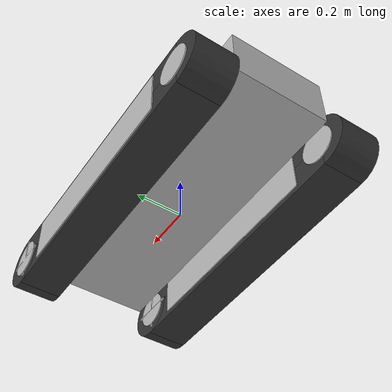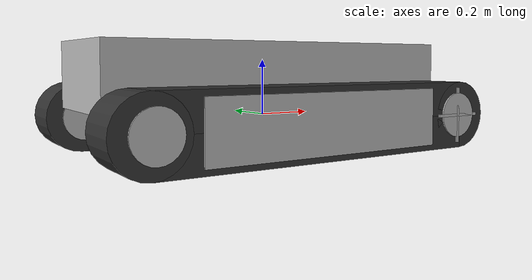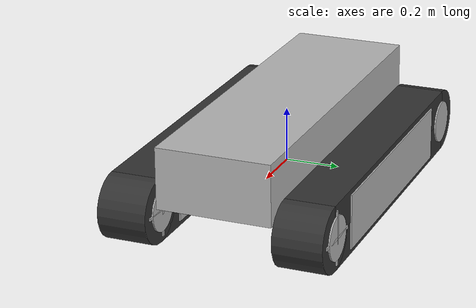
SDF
<sdf version='1.7'>
  <model name='gen3'>
    <link name='dummy'>
      <inertial>
        <pose>-0.00527 0 0 0 -0 0</pose>
        <mass>111</mass>
        <inertia>
          <ixx>3.0863</ixx>
          <ixy>0</ixy>
          <ixz>0</ixz>
          <iyy>16.4359</iyy>
          <iyz>0</iyz>
          <izz>18.6086</izz>
        </inertia>
      </inertial>
      <collision name='dummy_fixed_joint_lump__base_link_collision'>
        <pose>0 0 0.15 0 -0 0</pose>
        <geometry>
          <box>
            <size>1.34 0.42 0.225</size>
          </box>
        </geometry>
      </collision>
      <collision name='dummy_fixed_joint_lump__left_body_collision_1'>
        <pose>0 0.32 0 0 -0 0</pose>
        <geometry>
          <box>
            <size>0.9 0.19 0.2</size>
          </box>
        </geometry>
      </collision>
      <collision name='dummy_fixed_joint_lump__left_idler_collision_2'>
        <pose>-0.585 0.32 0 1.5708 -0 0</pose>
        <geometry>
          <cylinder>
            <length>0.19</length>
            <radius>0.08</radius>
          </cylinder>
        </geometry>
      </collision>
      <collision name='dummy_fixed_joint_lump__right_body_collision_3'>
        <pose>0 -0.32 0 0 -0 0</pose>
        <geometry>
          <box>
            <size>0.9 0.19 0.2</size>
          </box>
        </geometry>
      </collision>
      <collision name='dummy_fixed_joint_lump__right_idler_collision_4'>
        <pose>-0.585 -0.32 0 1.5708 -0 0</pose>
        <geometry>
          <cylinder>
            <length>0.19</length>
            <radius>0.08</radius>
          </cylinder>
        </geometry>
      </collision>
      <visual name='dummy_fixed_joint_lump__base_link_visual'>
        <pose>0 0 0.15 0 -0 0</pose>
        <geometry>
          <box>
            <size>1.34 0.42 0.225</size>
          </box>
        </geometry>
      </visual>
      <visual name='dummy_fixed_joint_lump__imu_link_visual_1'>
        <pose>0 0 0.2 0 -0 0</pose>
        <geometry>
          <box>
            <size>0.02 0.02 0.02</size>
          </box>
        </geometry>
      </visual>
      <visual name='dummy_fixed_joint_lump__left_body_visual_2'>
        <pose>0 0.32 0 0 -0 0</pose>
        <geometry>
          <box>
            <size>0.9 0.19 0.2</size>
          </box>
        </geometry>
      </visual>
      <visual name='dummy_fixed_joint_lump__left_idler_visual_3'>
        <pose>-0.585 0.32 0 1.5708 -0 0</pose>
        <geometry>
          <cylinder>
            <length>0.19</length>
            <radius>0.08</radius>
          </cylinder>
        </geometry>
      </visual>
      <visual name='dummy_fixed_joint_lump__right_body_visual_4'>
        <pose>0 -0.32 0 0 -0 0</pose>
        <geometry>
          <box>
            <size>0.9 0.19 0.2</size>
          </box>
        </geometry>
      </visual>
      <visual name='dummy_fixed_joint_lump__right_idler_visual_5'>
        <pose>-0.585 -0.32 0 1.5708 -0 0</pose>
        <geometry>
          <cylinder>
            <length>0.19</length>
            <radius>0.08</radius>
          </cylinder>
        </geometry>
      </visual>
      <gravity>1</gravity>
      <velocity_decay/>
      <gravity>1</gravity>
      <sensor name='imu_sensor' type='imu'>
        <imu>
          <angular_velocity>
            <x>
              <noise type='gaussian'>
                <mean>0</mean>
                <stddev>0.0002</stddev>
                <bias_mean>7.5e-06</bias_mean>
                <bias_stddev>8e-07</bias_stddev>
              </noise>
            </x>
            <y>
              <noise type='gaussian'>
                <mean>0</mean>
                <stddev>0.0002</stddev>
                <bias_mean>7.5e-06</bias_mean>
                <bias_stddev>8e-07</bias_stddev>
              </noise>
            </y>
            <z>
              <noise type='gaussian'>
                <mean>0</mean>
                <stddev>0.0002</stddev>
                <bias_mean>7.5e-06</bias_mean>
                <bias_stddev>8e-07</bias_stddev>
              </noise>
            </z>
          </angular_velocity>
          <linear_acceleration>
            <x>
              <noise type='gaussian'>
                <mean>0</mean>
                <stddev>0.017</stddev>
                <bias_mean>0.1</bias_mean>
                <bias_stddev>0.001</bias_stddev>
              </noise>
            </x>
            <y>
              <noise type='gaussian'>
                <mean>0</mean>
                <stddev>0.017</stddev>
                <bias_mean>0.1</bias_mean>
                <bias_stddev>0.001</bias_stddev>
              </noise>
            </y>
            <z>
              <noise type='gaussian'>
                <mean>0</mean>
                <stddev>0.017</stddev>
                <bias_mean>0.1</bias_mean>
                <bias_stddev>0.001</bias_stddev>
              </noise>
            </z>
          </linear_acceleration>
        </imu>
        <always_on>1</always_on>
        <update_rate>100</update_rate>
        <visualize>1</visualize>
        <topic>__default_topic__</topic>
        <plugin name='imu_plugin' filename='libgazebo_ros_imu_sensor.so'>
          <topicName>imu</topicName>
          <bodyName>imu_link</bodyName>
          <updateRateHZ>10.0</updateRateHZ>
          <gaussianNoise>0.0</gaussianNoise>
          <xyzOffset>0 0 0</xyzOffset>
          <rpyOffset>0 0 0</rpyOffset>
          <frameName>imu_link</frameName>
          <initialOrientationAsReference>0</initialOrientationAsReference>
        </plugin>
        <pose>0 0 0.2 0 -0 0</pose>
      </sensor>
    </link>
    <joint name='left_sprocket_axle' type='revolute'>
      <pose relative_to='dummy'>0.585 0.32 0 0 -0 0</pose>
      <parent>dummy</parent>
      <child>left_sprocket</child>
      <axis>
        <xyz>0 1 0</xyz>
        <limit>
          <lower>-1e+16</lower>
          <upper>1e+16</upper>
        </limit>
        <dynamics>
          <spring_reference>0</spring_reference>
          <spring_stiffness>0</spring_stiffness>
        </dynamics>
      </axis>
    </joint>
    <link name='left_sprocket'>
      <pose relative_to='left_sprocket_axle'>0 0 0 0 -0 0</pose>
      <inertial>
        <pose>0 0 0 0 -0 0</pose>
        <mass>1</mass>
        <inertia>
          <ixx>0.00460833</ixx>
          <ixy>0</ixy>
          <ixz>0</ixz>
          <iyy>0.0032</iyy>
          <iyz>0</iyz>
          <izz>0.00460833</izz>
        </inertia>
      </inertial>
      <collision name='left_sprocket_collision'>
        <pose>0 0 0 1.5708 -0 0</pose>
        <geometry>
          <cylinder>
            <length>0.19</length>
            <radius>0.08</radius>
          </cylinder>
        </geometry>
      </collision>
      <visual name='left_sprocket_visual'>
        <pose>0 0 0 1.5708 -0 0</pose>
        <geometry>
          <cylinder>
            <length>0.19</length>
            <radius>0.08</radius>
          </cylinder>
        </geometry>
      </visual>
      <visual name='left_sprocket_visual_1'>
        <pose>0 0 0 0 -0 0</pose>
        <geometry>
          <box>
            <size>0.01 0.19 0.2</size>
          </box>
        </geometry>
      </visual>
      <visual name='left_sprocket_visual_2'>
        <pose>0 0 0 0 -0 0</pose>
        <geometry>
          <box>
            <size>0.2 0.19 0.01</size>
          </box>
        </geometry>
      </visual>
    </link>
    <joint name='right_sprocket_axle' type='revolute'>
      <pose relative_to='dummy'>0.585 -0.32 0 0 -0 0</pose>
      <parent>dummy</parent>
      <child>right_sprocket</child>
      <axis>
        <xyz>0 1 0</xyz>
        <limit>
          <lower>-1e+16</lower>
          <upper>1e+16</upper>
        </limit>
        <dynamics>
          <spring_reference>0</spring_reference>
          <spring_stiffness>0</spring_stiffness>
        </dynamics>
      </axis>
    </joint>
    <link name='right_sprocket'>
      <pose relative_to='right_sprocket_axle'>0 0 0 0 -0 0</pose>
      <inertial>
        <pose>0 0 0 0 -0 0</pose>
        <mass>1</mass>
        <inertia>
          <ixx>0.00460833</ixx>
          <ixy>0</ixy>
          <ixz>0</ixz>
          <iyy>0.0032</iyy>
          <iyz>0</iyz>
          <izz>0.00460833</izz>
        </inertia>
      </inertial>
      <collision name='right_sprocket_collision'>
        <pose>0 0 0 1.5708 -0 0</pose>
        <geometry>
          <cylinder>
            <length>0.19</length>
            <radius>0.08</radius>
          </cylinder>
        </geometry>
      </collision>
      <visual name='right_sprocket_visual'>
        <pose>0 0 0 1.5708 -0 0</pose>
        <geometry>
          <cylinder>
            <length>0.19</length>
            <radius>0.08</radius>
          </cylinder>
        </geometry>
      </visual>
      <visual name='right_sprocket_visual_1'>
        <pose>0 0 0 0 -0 0</pose>
        <geometry>
          <box>
            <size>0.01 0.19 0.2</size>
          </box>
        </geometry>
      </visual>
      <visual name='right_sprocket_visual_2'>
        <pose>0 0 0 0 -0 0</pose>
        <geometry>
          <box>
            <size>0.2 0.19 0.01</size>
          </box>
        </geometry>
      </visual>
    </link>
    <link name='right_track_straight_segment_link0'>
      <pose>-0.6 -0.32 0.12 0 -0 0</pose>
      <inertial>
        <pose>0.6 0 -0.06 0 -0 0</pose>
        <mass>6.75</mass>
        <inertia>
          <ixx>0.026325</ixx>
          <ixy>0</ixy>
          <ixz>0</ixz>
          <iyy>0.8181</iyy>
          <iyz>0</iyz>
          <izz>0.828225</izz>
        </inertia>
      </inertial>
      <collision name='collision'>
        <pose>0.6 0 -0.06 0 -0 0</pose>
        <geometry>
          <box>
            <size>1.2 0.18 0.12</size>
          </box>
        </geometry>
        <surface>
          <friction>
            <ode>
              <mu>10</mu>
              <mu2>10</mu2>
            </ode>
          </friction>
          <contact>
            <ode>
              <min_depth>0.01</min_depth>
            </ode>
          </contact>
        </surface>
      </collision>
      <visual name='visual'>
        <pose>0.6 0 -0.06 0 -0 0</pose>
        <geometry>
          <box>
            <size>1.2 0.18 0.12</size>
          </box>
        </geometry>
        <material>
          <ambient>0.1 0.1 0.1 1</ambient>
          <diffuse>0.2 0.2 0.2 1</diffuse>
          <specular>0 0 0 1</specular>
          <emissive>0 0 0 1</emissive>
        </material>
      </visual>
    </link>
    <link name='right_track_straight_segment_link1'>
      <pose>0.6 -0.32 -0.12 3.14159 0 3.14159</pose>
      <inertial>
        <pose>0.6 0 -0.06 0 -0 0</pose>
        <mass>6.75</mass>
        <inertia>
          <ixx>0.026325</ixx>
          <ixy>0</ixy>
          <ixz>0</ixz>
          <iyy>0.8181</iyy>
          <iyz>0</iyz>
          <izz>0.828225</izz>
        </inertia>
      </inertial>
      <collision name='collision'>
        <pose>0.6 0 -0.06 0 -0 0</pose>
        <geometry>
          <box>
            <size>1.2 0.18 0.12</size>
          </box>
        </geometry>
        <surface>
          <friction>
            <ode>
              <mu>10</mu>
              <mu2>10</mu2>
            </ode>
          </friction>
          <contact>
            <ode>
              <min_depth>0.01</min_depth>
            </ode>
          </contact>
        </surface>
      </collision>
      <visual name='visual'>
        <pose>0.6 0 -0.06 0 -0 0</pose>
        <geometry>
          <box>
            <size>1.2 0.18 0.12</size>
          </box>
        </geometry>
        <material>
          <ambient>0.1 0.1 0.1 1</ambient>
          <diffuse>0.2 0.2 0.2 1</diffuse>
          <specular>0 0 0 1</specular>
          <emissive>0 0 0 1</emissive>
        </material>
      </visual>
    </link>
    <joint name='right_track_straight_segment_joint0' type='prismatic'>
      <child>right_track_straight_segment_link0</child>
      <axis>
        <xyz>1 0 0</xyz>
        <use_parent_model_frame>0</use_parent_model_frame>
        <limit>
          <lower>-1e+16</lower>
          <upper>1e+16</upper>
        </limit>
      </axis>
      <physics>
        <ode>
          <implicit_spring_damper>1</implicit_spring_damper>
        </ode>
      </physics>
      <parent>dummy</parent>
    </joint>
    <joint name='right_track_straight_segment_joint1' type='prismatic'>
      <child>right_track_straight_segment_link1</child>
      <axis>
        <xyz>1 0 0</xyz>
        <use_parent_model_frame>0</use_parent_model_frame>
        <limit>
          <lower>-1e+16</lower>
          <upper>1e+16</upper>
        </limit>
      </axis>
      <physics>
        <ode>
          <implicit_spring_damper>1</implicit_spring_damper>
        </ode>
      </physics>
      <parent>dummy</parent>
    </joint>
    <link name='right_track_arc_segment_link0'>
      <pose>0.6 -0.32 0.12 0 -0 0</pose>
      <inertial>
        <pose>0 0 -0.12 1.5708 -0 0</pose>
        <mass>6.75</mass>
        <inertia>
          <ixx>0.042525</ixx>
          <ixy>0</ixy>
          <ixz>0</ixz>
          <iyy>0.042525</iyy>
          <iyz>0</iyz>
          <izz>0.0486</izz>
        </inertia>
      </inertial>
      <collision name='collision'>
        <pose>0 0 -0.12 1.5708 -0 0</pose>
        <geometry>
          <cylinder>
            <length>0.18</length>
            <radius>0.12</radius>
          </cylinder>
        </geometry>
        <surface>
          <friction>
            <ode>
              <mu>10</mu>
              <mu2>10</mu2>
            </ode>
          </friction>
          <contact>
            <ode>
              <min_depth>0.01</min_depth>
            </ode>
          </contact>
        </surface>
      </collision>
      <visual name='visual'>
        <pose>0 0 -0.12 1.5708 -0 0</pose>
        <geometry>
          <cylinder>
            <length>0.18</length>
            <radius>0.12</radius>
          </cylinder>
        </geometry>
        <material>
          <ambient>0.1 0.1 0.1 1</ambient>
          <diffuse>0.2 0.2 0.2 1</diffuse>
          <specular>0 0 0 1</specular>
          <emissive>0 0 0 1</emissive>
        </material>
      </visual>
    </link>
    <link name='right_track_arc_segment_link1'>
      <pose>-0.6 -0.32 -0.12 3.14159 0 3.14159</pose>
      <inertial>
        <pose>0 0 -0.12 1.5708 -0 0</pose>
        <mass>6.75</mass>
        <inertia>
          <ixx>0.042525</ixx>
          <ixy>0</ixy>
          <ixz>0</ixz>
          <iyy>0.042525</iyy>
          <iyz>0</iyz>
          <izz>0.0486</izz>
        </inertia>
      </inertial>
      <collision name='collision'>
        <pose>0 0 -0.12 1.5708 -0 0</pose>
        <geometry>
          <cylinder>
            <length>0.18</length>
            <radius>0.12</radius>
          </cylinder>
        </geometry>
        <surface>
          <friction>
            <ode>
              <mu>10</mu>
              <mu2>10</mu2>
            </ode>
          </friction>
          <contact>
            <ode>
              <min_depth>0.01</min_depth>
            </ode>
          </contact>
        </surface>
      </collision>
      <visual name='visual'>
        <pose>0 0 -0.12 1.5708 -0 0</pose>
        <geometry>
          <cylinder>
            <length>0.18</length>
            <radius>0.12</radius>
          </cylinder>
        </geometry>
        <material>
          <ambient>0.1 0.1 0.1 1</ambient>
          <diffuse>0.2 0.2 0.2 1</diffuse>
          <specular>0 0 0 1</specular>
          <emissive>0 0 0 1</emissive>
        </material>
      </visual>
    </link>
    <joint name='right_track_arc_segment_joint0' type='revolute'>
      <child>right_track_arc_segment_link0</child>
      <pose>0 0 -0.12 0 -0 0</pose>
      <axis>
        <xyz>0 1 0</xyz>
        <use_parent_model_frame>0</use_parent_model_frame>
        <limit>
          <lower>-1e+16</lower>
          <upper>1e+16</upper>
        </limit>
      </axis>
      <physics>
        <ode>
          <implicit_spring_damper>1</implicit_spring_damper>
        </ode>
      </physics>
      <parent>dummy</parent>
    </joint>
    <joint name='right_track_arc_segment_joint1' type='revolute'>
      <child>right_track_arc_segment_link1</child>
      <pose>0 0 -0.12 0 -0 0</pose>
      <axis>
        <xyz>0 1 0</xyz>
        <use_parent_model_frame>0</use_parent_model_frame>
        <limit>
          <lower>-1e+16</lower>
          <upper>1e+16</upper>
        </limit>
      </axis>
      <physics>
        <ode>
          <implicit_spring_damper>1</implicit_spring_damper>
        </ode>
      </physics>
      <parent>dummy</parent>
    </joint>
    <plugin name='right_track' filename='libContinuousTrack.so'>
      <sprocket>
        <joint>right_sprocket_axle</joint>
        <pitch_diameter>0.22</pitch_diameter>
      </sprocket>
      <trajectory>
        <segment>
          <joint>right_track_straight_segment_joint0</joint>
          <end_position>1.2</end_position>
        </segment>
        <segment>
          <joint>right_track_arc_segment_joint0</joint>
          <end_position>3.141592653589793</end_position>
        </segment>
        <segment>
          <joint>right_track_straight_segment_joint1</joint>
          <end_position>1.2</end_position>
        </segment>
        <segment>
          <joint>right_track_arc_segment_joint1</joint>
          <end_position>3.141592653589793</end_position>
        </segment>
      </trajectory>
      <pattern>
        <elements_per_round>40</elements_per_round>
        <element>
          <collision name='collision'>
            <pose>0 0.09 0 1.5707963267948966 0 0</pose>
            <geometry>
              <polyline>
                <point>-0.02 -0.01</point>
                <point>-0.01 0.01</point>
                <point>0.01 0.01</point>
                <point>0.02 -0.01</point>
                <height>0.18</height>
              </polyline>
            </geometry>
            <surface>
              <friction>
                <ode>
                  <mu>10</mu>
                  <mu2>10</mu2>
                </ode>
              </friction>
              <contact>
                <ode>
                  <min_depth>0.01</min_depth>
                </ode>
              </contact>
            </surface>
          </collision>
          <visual name='visual'>
            <pose>0 0.09 0 1.5707963267948966 0 0</pose>
            <geometry>
              <polyline>
                <point>-0.02 -0.01</point>
                <point>-0.01 0.01</point>
                <point>0.01 0.01</point>
                <point>0.02 -0.01</point>
                <height>0.18</height>
              </polyline>
            </geometry>
            <material>
              <ambient>0.1 0.1 0.1 1</ambient>
              <diffuse>0.2 0.2 0.2 1</diffuse>
              <specular>0 0 0 1</specular>
              <emissive>0 0 0 1</emissive>
            </material>
          </visual>
        </element>
      </pattern>
    </plugin>
    <link name='left_track_straight_segment_link0'>
      <pose>-0.6 0.32 0.12 0 -0 0</pose>
      <inertial>
        <pose>0.6 0 -0.06 0 -0 0</pose>
        <mass>6.75</mass>
        <inertia>
          <ixx>0.026325</ixx>
          <ixy>0</ixy>
          <ixz>0</ixz>
          <iyy>0.8181</iyy>
          <iyz>0</iyz>
          <izz>0.828225</izz>
        </inertia>
      </inertial>
      <collision name='collision'>
        <pose>0.6 0 -0.06 0 -0 0</pose>
        <geometry>
          <box>
            <size>1.2 0.18 0.12</size>
          </box>
        </geometry>
        <surface>
          <friction>
            <ode>
              <mu>10</mu>
              <mu2>10</mu2>
            </ode>
          </friction>
          <contact>
            <ode>
              <min_depth>0.01</min_depth>
            </ode>
          </contact>
        </surface>
      </collision>
      <visual name='visual'>
        <pose>0.6 0 -0.06 0 -0 0</pose>
        <geometry>
          <box>
            <size>1.2 0.18 0.12</size>
          </box>
        </geometry>
        <material>
          <ambient>0.1 0.1 0.1 1</ambient>
          <diffuse>0.2 0.2 0.2 1</diffuse>
          <specular>0 0 0 1</specular>
          <emissive>0 0 0 1</emissive>
        </material>
      </visual>
    </link>
    <link name='left_track_straight_segment_link1'>
      <pose>0.6 0.32 -0.12 3.14159 0 3.14159</pose>
      <inertial>
        <pose>0.6 0 -0.06 0 -0 0</pose>
        <mass>6.75</mass>
        <inertia>
          <ixx>0.026325</ixx>
          <ixy>0</ixy>
          <ixz>0</ixz>
          <iyy>0.8181</iyy>
          <iyz>0</iyz>
          <izz>0.828225</izz>
        </inertia>
      </inertial>
      <collision name='collision'>
        <pose>0.6 0 -0.06 0 -0 0</pose>
        <geometry>
          <box>
            <size>1.2 0.18 0.12</size>
          </box>
        </geometry>
        <surface>
          <friction>
            <ode>
              <mu>10</mu>
              <mu2>10</mu2>
            </ode>
          </friction>
          <contact>
            <ode>
              <min_depth>0.01</min_depth>
            </ode>
          </contact>
        </surface>
      </collision>
      <visual name='visual'>
        <pose>0.6 0 -0.06 0 -0 0</pose>
        <geometry>
          <box>
            <size>1.2 0.18 0.12</size>
          </box>
        </geometry>
        <material>
          <ambient>0.1 0.1 0.1 1</ambient>
          <diffuse>0.2 0.2 0.2 1</diffuse>
          <specular>0 0 0 1</specular>
          <emissive>0 0 0 1</emissive>
        </material>
      </visual>
    </link>
    <joint name='left_track_straight_segment_joint0' type='prismatic'>
      <child>left_track_straight_segment_link0</child>
      <axis>
        <xyz>1 0 0</xyz>
        <use_parent_model_frame>0</use_parent_model_frame>
        <limit>
          <lower>-1e+16</lower>
          <upper>1e+16</upper>
        </limit>
      </axis>
      <physics>
        <ode>
          <implicit_spring_damper>1</implicit_spring_damper>
        </ode>
      </physics>
      <parent>dummy</parent>
    </joint>
    <joint name='left_track_straight_segment_joint1' type='prismatic'>
      <child>left_track_straight_segment_link1</child>
      <axis>
        <xyz>1 0 0</xyz>
        <use_parent_model_frame>0</use_parent_model_frame>
        <limit>
          <lower>-1e+16</lower>
          <upper>1e+16</upper>
        </limit>
      </axis>
      <physics>
        <ode>
          <implicit_spring_damper>1</implicit_spring_damper>
        </ode>
      </physics>
      <parent>dummy</parent>
    </joint>
    <link name='left_track_arc_segment_link0'>
      <pose>0.6 0.32 0.12 0 -0 0</pose>
      <inertial>
        <pose>0 0 -0.12 1.5708 -0 0</pose>
        <mass>6.75</mass>
        <inertia>
          <ixx>0.042525</ixx>
          <ixy>0</ixy>
          <ixz>0</ixz>
          <iyy>0.042525</iyy>
          <iyz>0</iyz>
          <izz>0.0486</izz>
        </inertia>
      </inertial>
      <collision name='collision'>
        <pose>0 0 -0.12 1.5708 -0 0</pose>
        <geometry>
          <cylinder>
            <length>0.18</length>
            <radius>0.12</radius>
          </cylinder>
        </geometry>
        <surface>
          <friction>
            <ode>
              <mu>10</mu>
              <mu2>10</mu2>
            </ode>
          </friction>
          <contact>
            <ode>
              <min_depth>0.01</min_depth>
            </ode>
          </contact>
        </surface>
      </collision>
      <visual name='visual'>
        <pose>0 0 -0.12 1.5708 -0 0</pose>
        <geometry>
          <cylinder>
            <length>0.18</length>
            <radius>0.12</radius>
          </cylinder>
        </geometry>
        <material>
          <ambient>0.1 0.1 0.1 1</ambient>
          <diffuse>0.2 0.2 0.2 1</diffuse>
          <specular>0 0 0 1</specular>
          <emissive>0 0 0 1</emissive>
        </material>
      </visual>
    </link>
    <link name='left_track_arc_segment_link1'>
      <pose>-0.6 0.32 -0.12 3.14159 0 3.14159</pose>
      <inertial>
        <pose>0 0 -0.12 1.5708 -0 0</pose>
        <mass>6.75</mass>
        <inertia>
          <ixx>0.042525</ixx>
          <ixy>0</ixy>
          <ixz>0</ixz>
          <iyy>0.042525</iyy>
          <iyz>0</iyz>
          <izz>0.0486</izz>
        </inertia>
      </inertial>
      <collision name='collision'>
        <pose>0 0 -0.12 1.5708 -0 0</pose>
        <geometry>
          <cylinder>
            <length>0.18</length>
            <radius>0.12</radius>
          </cylinder>
        </geometry>
        <surface>
          <friction>
            <ode>
              <mu>10</mu>
              <mu2>10</mu2>
            </ode>
          </friction>
          <contact>
            <ode>
              <min_depth>0.01</min_depth>
            </ode>
          </contact>
        </surface>
      </collision>
      <visual name='visual'>
        <pose>0 0 -0.12 1.5708 -0 0</pose>
        <geometry>
          <cylinder>
            <length>0.18</length>
            <radius>0.12</radius>
          </cylinder>
        </geometry>
        <material>
          <ambient>0.1 0.1 0.1 1</ambient>
          <diffuse>0.2 0.2 0.2 1</diffuse>
          <specular>0 0 0 1</specular>
          <emissive>0 0 0 1</emissive>
        </material>
      </visual>
    </link>
    <joint name='left_track_arc_segment_joint0' type='revolute'>
      <child>left_track_arc_segment_link0</child>
      <pose>0 0 -0.12 0 -0 0</pose>
      <axis>
        <xyz>0 1 0</xyz>
        <use_parent_model_frame>0</use_parent_model_frame>
        <limit>
          <lower>-1e+16</lower>
          <upper>1e+16</upper>
        </limit>
      </axis>
      <physics>
        <ode>
          <implicit_spring_damper>1</implicit_spring_damper>
        </ode>
      </physics>
      <parent>dummy</parent>
    </joint>
    <joint name='left_track_arc_segment_joint1' type='revolute'>
      <child>left_track_arc_segment_link1</child>
      <pose>0 0 -0.12 0 -0 0</pose>
      <axis>
        <xyz>0 1 0</xyz>
        <use_parent_model_frame>0</use_parent_model_frame>
        <limit>
          <lower>-1e+16</lower>
          <upper>1e+16</upper>
        </limit>
      </axis>
      <physics>
        <ode>
          <implicit_spring_damper>1</implicit_spring_damper>
        </ode>
      </physics>
      <parent>dummy</parent>
    </joint>
    <plugin name='left_track' filename='libContinuousTrack.so'>
      <sprocket>
        <joint>left_sprocket_axle</joint>
        <pitch_diameter>0.22</pitch_diameter>
      </sprocket>
      <trajectory>
        <segment>
          <joint>left_track_straight_segment_joint0</joint>
          <end_position>1.2</end_position>
        </segment>
        <segment>
          <joint>left_track_arc_segment_joint0</joint>
          <end_position>3.141592653589793</end_position>
        </segment>
        <segment>
          <joint>left_track_straight_segment_joint1</joint>
          <end_position>1.2</end_position>
        </segment>
        <segment>
          <joint>left_track_arc_segment_joint1</joint>
          <end_position>3.141592653589793</end_position>
        </segment>
      </trajectory>
      <pattern>
        <elements_per_round>40</elements_per_round>
        <element>
          <collision name='collision'>
            <pose>0 0.09 0 1.5707963267948966 0 0</pose>
            <geometry>
              <polyline>
                <point>-0.02 -0.01</point>
                <point>-0.01 0.01</point>
                <point>0.01 0.01</point>
                <point>0.02 -0.01</point>
                <height>0.18</height>
              </polyline>
            </geometry>
            <surface>
              <friction>
                <ode>
                  <mu>10</mu>
                  <mu2>10</mu2>
                </ode>
              </friction>
              <contact>
                <ode>
                  <min_depth>0.01</min_depth>
                </ode>
              </contact>
            </surface>
          </collision>
          <visual name='visual'>
            <pose>0 0.09 0 1.5707963267948966 0 0</pose>
            <geometry>
              <polyline>
                <point>-0.02 -0.01</point>
                <point>-0.01 0.01</point>
                <point>0.01 0.01</point>
                <point>0.02 -0.01</point>
                <height>0.18</height>
              </polyline>
            </geometry>
            <material>
              <ambient>0.1 0.1 0.1 1</ambient>
              <diffuse>0.2 0.2 0.2 1</diffuse>
              <specular>0 0 0 1</specular>
              <emissive>0 0 0 1</emissive>
            </material>
          </visual>
        </element>
      </pattern>
    </plugin>
    <static>0</static>
    <plugin name='gazebo_ros_control' filename='libgazebo_ros_control.so'>
      <robotNamespace>/</robotNamespace>
      <legacyModeNS>1</legacyModeNS>
    </plugin>
  </model>
</sdf>
